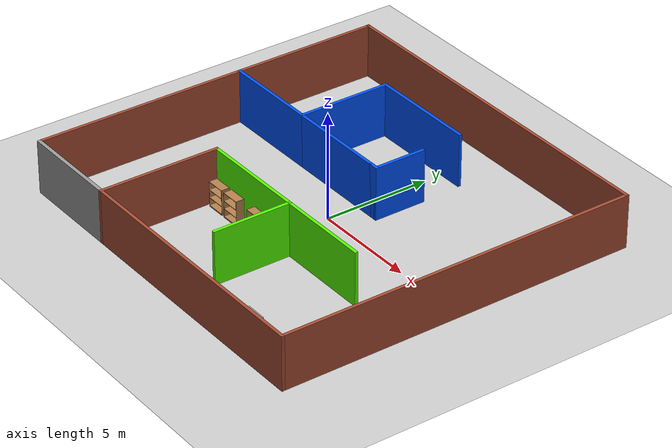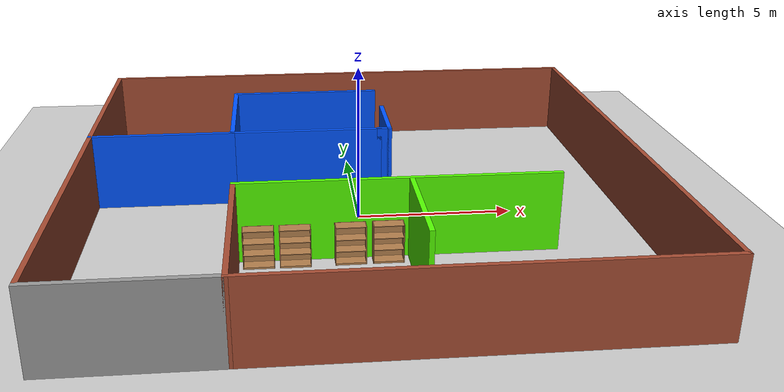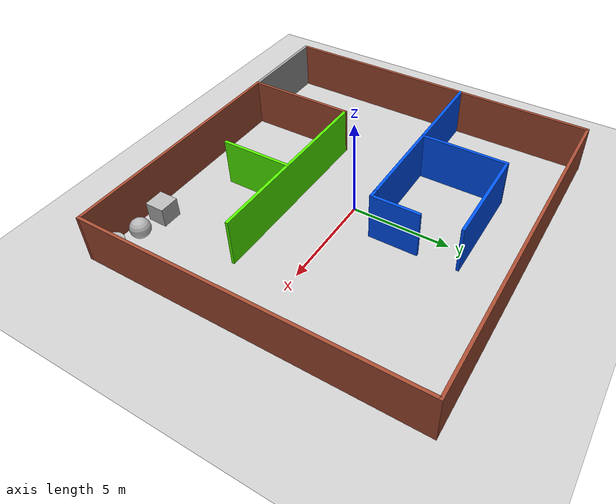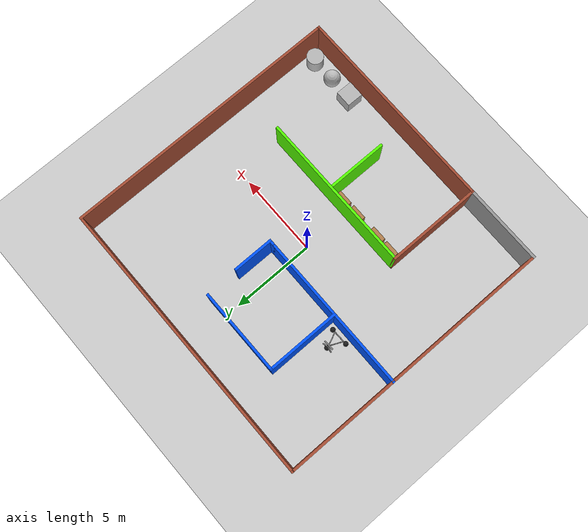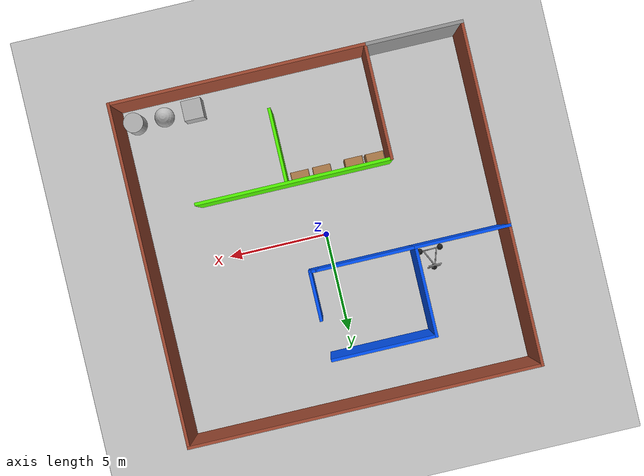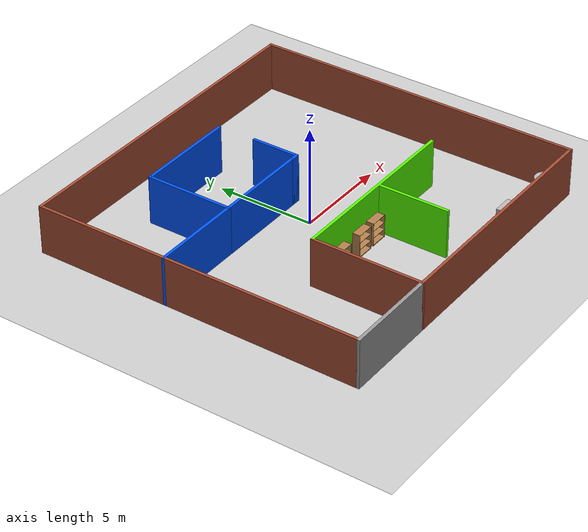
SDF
<sdf version="1.6">
 <world name="default">
  <model name="ground_plane">
   <static>1</static>
   <link name="link">
    <collision name="collision">
     <geometry><plane><normal>0 0 1</normal><size>100 100</size></plane></geometry>
     <surface><friction><ode><mu>100</mu><mu2>50</mu2></ode></friction></surface>
    </collision>
    <visual name="visual">
     <cast_shadows>0</cast_shadows>
     <geometry><plane><normal>0 0 1</normal><size>100 100</size></plane></geometry>
     <material>
      <script><uri>file://media/materials/scripts/gazebo.material</uri><name>Gazebo/Grey</name></script>
     </material>
    </visual>
   </link>
  </model>
  <model name="my_building">
   <pose>0.06133 -0.00347 0 0 -0 0</pose>
   <link name="Door_1">
    <collision name="Door_1_Collision">
     <geometry><box><size>4.8 0.17 2.5</size></box></geometry>
     <pose>0 0 1.25 0 -0 0</pose>
    </collision>
    <visual name="Door_1_Visual">
     <pose>0 0 1.25 0 -0 0</pose>
     <geometry><box><size>4.8 0.17 2.5</size></box></geometry>
     <material>
      <script><uri>file://media/materials/scripts/gazebo.material</uri><name>Gazebo/Grey</name></script>
     </material>
    </visual>
    <pose>-6.34787 -8.415 0 0 -0 0</pose>
   </link>
   <link name="Wall_13">
    <collision name="Wall_13_Collision">
     <geometry><box><size>4.75 0.15 2.5</size></box></geometry>
     <pose>0 0 1.25 0 -0 0</pose>
    </collision>
    <visual name="Wall_13_Visual">
     <pose>0 0 1.25 0 -0 0</pose>
     <geometry><box><size>4.75 0.15 2.5</size></box></geometry>
     <material>
      <script><uri>file://media/materials/scripts/gazebo.material</uri><name>Gazebo/Grey</name></script>
      <ambient>0 0.333333 1 1</ambient>
     </material>
     <meta><layer>0</layer></meta>
    </visual>
    <pose>-6.375 1.575 0 0 -0 3.14159</pose>
   </link>
   <link name="Wall_14">
    <collision name="Wall_14_Collision">
     <geometry><box><size>7 0.15 2.5</size></box></geometry>
     <pose>0 0 1.25 0 -0 0</pose>
    </collision>
    <visual name="Wall_14_Visual">
     <pose>0 0 1.25 0 -0 0</pose>
     <geometry><box><size>7 0.15 2.5</size></box></geometry>
     <material>
      <script><uri>file://media/materials/scripts/gazebo.material</uri><name>Gazebo/Bricks</name></script>
      <ambient>1 1 1 1</ambient>
     </material>
     <meta><layer>0</layer></meta>
    </visual>
    <pose>-8.675 5 0 0 -0 1.5708</pose>
   </link>
   <link name="Wall_15">
    <collision name="Wall_15_Collision">
     <geometry><box><size>17.5 0.15 2.5</size></box></geometry>
     <pose>0 0 1.25 0 -0 0</pose>
    </collision>
    <visual name="Wall_15_Visual">
     <pose>0 0 1.25 0 -0 0</pose>
     <geometry><box><size>17.5 0.15 2.5</size></box></geometry>
     <material>
      <script><uri>file://media/materials/scripts/gazebo.material</uri><name>Gazebo/Bricks</name></script>
      <ambient>1 1 1 1</ambient>
     </material>
     <meta><layer>0</layer></meta>
    </visual>
    <pose>0 8.425 0 0 -0 0</pose>
   </link>
   <link name="Wall_21">
    <collision name="Wall_21_Collision">
     <geometry><box><size>17 0.15 2.5</size></box></geometry>
     <pose>0 0 1.25 0 -0 0</pose>
    </collision>
    <visual name="Wall_21_Visual">
     <pose>0 0 1.25 0 -0 0</pose>
     <geometry><box><size>17 0.15 2.5</size></box></geometry>
     <material>
      <script><uri>file://media/materials/scripts/gazebo.material</uri><name>Gazebo/Bricks</name></script>
      <ambient>1 1 1 1</ambient>
     </material>
     <meta><layer>0</layer></meta>
    </visual>
    <pose>8.675 0 0 0 0 -1.5708</pose>
   </link>
   <link name="Wall_24">
    <collision name="Wall_24_Collision">
     <geometry><box><size>12.75 0.15 2.5</size></box></geometry>
     <pose>0 0 1.25 0 -0 0</pose>
    </collision>
    <visual name="Wall_24_Visual">
     <pose>0 0 1.25 0 -0 0</pose>
     <geometry><box><size>12.75 0.15 2.5</size></box></geometry>
     <material>
      <script><uri>file://media/materials/scripts/gazebo.material</uri><name>Gazebo/Bricks</name></script>
      <ambient>1 1 1 1</ambient>
     </material>
     <meta><layer>0</layer></meta>
    </visual>
    <pose>2.375 -8.425 0 0 -0 3.14159</pose>
   </link>
   <link name="Wall_25">
    <collision name="Wall_25_Collision">
     <geometry><box><size>5.75 0.15 2.5</size></box></geometry>
     <pose>0 0 1.25 0 -0 0</pose>
    </collision>
    <visual name="Wall_25_Visual">
     <pose>0 0 1.25 0 -0 0</pose>
     <geometry><box><size>5.75 0.15 2.5</size></box></geometry>
     <material>
      <script><uri>file://media/materials/scripts/gazebo.material</uri><name>Gazebo/Bricks</name></script>
      <ambient>1 1 1 1</ambient>
     </material>
     <meta><layer>0</layer></meta>
    </visual>
    <pose>-3.925 -5.625 0 0 -0 1.5708</pose>
   </link>
   <link name="Wall_26">
    <collision name="Wall_26_Collision">
     <geometry><box><size>9.75 0.15 2.5</size></box></geometry>
     <pose>0 0 1.25 0 -0 0</pose>
    </collision>
    <visual name="Wall_26_Visual">
     <pose>0 0 1.25 0 -0 0</pose>
     <geometry><box><size>9.75 0.15 2.5</size></box></geometry>
     <material>
      <script><uri>file://media/materials/scripts/gazebo.material</uri><name>Gazebo/Grey</name></script>
      <ambient>0.333333 1 0 1</ambient>
     </material>
     <meta><layer>0</layer></meta>
    </visual>
    <pose>0.875 -2.825 0 0 -0 0</pose>
   </link>
   <link name="Wall_30">
    <collision name="Wall_30_Collision">
     <geometry><box><size>4.5 0.15 2.5</size></box></geometry>
     <pose>0 0 1.25 0 -0 0</pose>
    </collision>
    <visual name="Wall_30_Visual">
     <pose>0 0 1.25 0 -0 0</pose>
     <geometry><box><size>4.5 0.15 2.5</size></box></geometry>
     <material>
      <script><uri>file://media/materials/scripts/gazebo.material</uri><name>Gazebo/Grey</name></script>
      <ambient>0 0.333333 1 1</ambient>
     </material>
     <meta><layer>0</layer></meta>
    </visual>
    <pose>-4.075 3.75 0 0 -0 1.5708</pose>
   </link>
   <link name="Wall_31">
    <collision name="Wall_31_Collision">
     <geometry><box><size>5.25 0.15 2.5</size></box></geometry>
     <pose>0 0 1.25 0 -0 0</pose>
    </collision>
    <visual name="Wall_31_Visual">
     <pose>0 0 1.25 0 -0 0</pose>
     <geometry><box><size>5.25 0.15 2.5</size></box></geometry>
     <material>
      <script><uri>file://media/materials/scripts/gazebo.material</uri><name>Gazebo/Grey</name></script>
      <ambient>0 0.333333 1 1</ambient>
     </material>
     <meta><layer>0</layer></meta>
    </visual>
    <pose>-1.525 5.925 0 0 -0 0</pose>
   </link>
   <link name="Wall_33">
    <collision name="Wall_33_Collision">
     <geometry><box><size>5 0.15 2.5</size></box></geometry>
     <pose>0 0 1.25 0 -0 0</pose>
    </collision>
    <visual name="Wall_33_Visual">
     <pose>0 0 1.25 0 -0 0</pose>
     <geometry><box><size>5 0.15 2.5</size></box></geometry>
     <material>
      <script><uri>file://media/materials/scripts/gazebo.material</uri><name>Gazebo/Grey</name></script>
      <ambient>0 0.333333 1 1</ambient>
     </material>
     <meta><layer>0</layer></meta>
    </visual>
    <pose>-1.65 1.575 0 0 -0 0</pose>
   </link>
   <link name="Wall_34">
    <collision name="Wall_34_Collision">
     <geometry><box><size>0.5 0.15 2.5</size></box></geometry>
     <pose>0 0 1.25 0 -0 0</pose>
    </collision>
    <visual name="Wall_34_Visual">
     <pose>0 0 1.25 0 -0 0</pose>
     <geometry><box><size>0.5 0.15 2.5</size></box></geometry>
     <material>
      <script><uri>file://media/materials/scripts/gazebo.material</uri><name>Gazebo/Grey</name></script>
      <ambient>0 0.333333 1 1</ambient>
     </material>
     <meta><layer>0</layer></meta>
    </visual>
    <pose>0.95 1.575 0 0 -0 0</pose>
   </link>
   <link name="Wall_35">
    <collision name="Wall_35_Collision">
     <geometry><box><size>2.5 0.15 2.5</size></box></geometry>
     <pose>0 0 1.25 0 -0 0</pose>
    </collision>
    <visual name="Wall_35_Visual">
     <pose>0 0 1.25 0 -0 0</pose>
     <geometry><box><size>2.5 0.15 2.5</size></box></geometry>
     <material>
      <script><uri>file://media/materials/scripts/gazebo.material</uri><name>Gazebo/Grey</name></script>
      <ambient>0 0.333333 1 1</ambient>
     </material>
     <meta><layer>0</layer></meta>
    </visual>
    <pose>1.125 2.75 0 0 -0 1.5708</pose>
   </link>
   <link name="Wall_37">
    <collision name="Wall_37_Collision">
     <geometry><box><size>10 0.15 2.5</size></box></geometry>
     <pose>0 0 1.25 0 -0 0</pose>
    </collision>
    <visual name="Wall_37_Visual">
     <pose>0 0 1.25 0 -0 0</pose>
     <geometry><box><size>10 0.15 2.5</size></box></geometry>
     <material>
      <script><uri>file://media/materials/scripts/gazebo.material</uri><name>Gazebo/Bricks</name></script>
      <ambient>1 1 1 1</ambient>
     </material>
     <meta><layer>0</layer></meta>
    </visual>
    <pose>-8.675 -3.35 0 0 0 -1.5708</pose>
   </link>
   <link name="Wall_39">
    <collision name="Wall_39_Collision">
     <geometry><box><size>3.75 0.15 2.5</size></box></geometry>
     <pose>0 0 1.25 0 -0 0</pose>
    </collision>
    <visual name="Wall_39_Visual">
     <pose>0 0 1.25 0 -0 0</pose>
     <geometry><box><size>3.75 0.15 2.5</size></box></geometry>
     <material>
      <script><uri>file://media/materials/scripts/gazebo.material</uri><name>Gazebo/Grey</name></script>
      <ambient>0.333333 1 0 1</ambient>
     </material>
     <meta><layer>0</layer></meta>
    </visual>
    <pose>1.24076 -4.62607 0 0 0 -1.5708</pose>
   </link>
   <static>1</static>
  </model>
  <model name="bookshelf">
   <static>1</static>
   <link name="link">
    <inertial><mass>1</mass></inertial>
    <collision name="back">
     <pose>0 0.005 0.6 0 -0 0</pose>
     <geometry><box><size>0.9 0.01 1.2</size></box></geometry>
    </collision>
    <visual name="visual1">
     <pose>0 0.005 0.6 0 -0 0</pose>
     <geometry><box><size>0.9 0.01 1.2</size></box></geometry>
     <material>
      <script><uri>file://media/materials/scripts/gazebo.material</uri><name>Gazebo/Wood</name></script>
     </material>
    </visual>
    <collision name="left_side">
     <pose>0.45 -0.195 0.6 0 -0 0</pose>
     <geometry><box><size>0.02 0.4 1.2</size></box></geometry>
    </collision>
    <visual name="visual2">
     <pose>0.45 -0.195 0.6 0 -0 0</pose>
     <geometry><box><size>0.02 0.4 1.2</size></box></geometry>
     <material>
      <script><uri>file://media/materials/scripts/gazebo.material</uri><name>Gazebo/Wood</name></script>
     </material>
    </visual>
    <collision name="right_side">
     <pose>-0.45 -0.195 0.6 0 -0 0</pose>
     <geometry><box><size>0.02 0.4 1.2</size></box></geometry>
    </collision>
    <visual name="visual3">
     <pose>-0.45 -0.195 0.6 0 -0 0</pose>
     <geometry><box><size>0.02 0.4 1.2</size></box></geometry>
     <material>
      <script><uri>file://media/materials/scripts/gazebo.material</uri><name>Gazebo/Wood</name></script>
     </material>
    </visual>
    <collision name="bottom">
     <pose>0 -0.195 0.03 0 -0 0</pose>
     <geometry><box><size>0.88 0.4 0.06</size></box></geometry>
    </collision>
    <visual name="visual4">
     <pose>0 -0.195 0.03 0 -0 0</pose>
     <geometry><box><size>0.88 0.4 0.06</size></box></geometry>
     <material>
      <script><uri>file://media/materials/scripts/gazebo.material</uri><name>Gazebo/Wood</name></script>
     </material>
    </visual>
    <collision name="top">
     <pose>0 -0.195 1.19 0 -0 0</pose>
     <geometry><box><size>0.88 0.4 0.02</size></box></geometry>
    </collision>
    <visual name="visual5">
     <pose>0 -0.195 1.19 0 -0 0</pose>
     <geometry><box><size>0.88 0.4 0.02</size></box></geometry>
     <material>
      <script><uri>file://media/materials/scripts/gazebo.material</uri><name>Gazebo/Wood</name></script>
     </material>
    </visual>
    <collision name="low_shelf">
     <pose>0 -0.195 0.43 0 -0 0</pose>
     <geometry><box><size>0.88 0.4 0.02</size></box></geometry>
    </collision>
    <visual name="visual6">
     <pose>0 -0.195 0.43 0 -0 0</pose>
     <geometry><box><size>0.88 0.4 0.02</size></box></geometry>
     <material>
      <script><uri>file://media/materials/scripts/gazebo.material</uri><name>Gazebo/Wood</name></script>
     </material>
    </visual>
    <collision name="high_shelf">
     <pose>0 -0.195 0.8 0 -0 0</pose>
     <geometry><box><size>0.88 0.4 0.02</size></box></geometry>
    </collision>
    <visual name="visual7">
     <pose>0 -0.195 0.8 0 -0 0</pose>
     <geometry><box><size>0.88 0.4 0.02</size></box></geometry>
     <material>
      <script><uri>file://media/materials/scripts/gazebo.material</uri><name>Gazebo/Wood</name></script>
     </material>
    </visual>
   </link>
   <pose>-3.20385 -2.9972 0 0 -0 0</pose>
  </model>
  <model name="bookshelf_clone">
   <static>1</static>
   <link name="link">
    <inertial><mass>1</mass></inertial>
    <collision name="back">
     <pose>0 0.005 0.6 0 -0 0</pose>
     <geometry><box><size>0.9 0.01 1.2</size></box></geometry>
    </collision>
    <visual name="visual1">
     <pose>0 0.005 0.6 0 -0 0</pose>
     <geometry><box><size>0.9 0.01 1.2</size></box></geometry>
     <material>
      <script><uri>file://media/materials/scripts/gazebo.material</uri><name>Gazebo/Wood</name></script>
     </material>
    </visual>
    <collision name="left_side">
     <pose>0.45 -0.195 0.6 0 -0 0</pose>
     <geometry><box><size>0.02 0.4 1.2</size></box></geometry>
    </collision>
    <visual name="visual2">
     <pose>0.45 -0.195 0.6 0 -0 0</pose>
     <geometry><box><size>0.02 0.4 1.2</size></box></geometry>
     <material>
      <script><uri>file://media/materials/scripts/gazebo.material</uri><name>Gazebo/Wood</name></script>
     </material>
    </visual>
    <collision name="right_side">
     <pose>-0.45 -0.195 0.6 0 -0 0</pose>
     <geometry><box><size>0.02 0.4 1.2</size></box></geometry>
    </collision>
    <visual name="visual3">
     <pose>-0.45 -0.195 0.6 0 -0 0</pose>
     <geometry><box><size>0.02 0.4 1.2</size></box></geometry>
     <material>
      <script><uri>file://media/materials/scripts/gazebo.material</uri><name>Gazebo/Wood</name></script>
     </material>
    </visual>
    <collision name="bottom">
     <pose>0 -0.195 0.03 0 -0 0</pose>
     <geometry><box><size>0.88 0.4 0.06</size></box></geometry>
    </collision>
    <visual name="visual4">
     <pose>0 -0.195 0.03 0 -0 0</pose>
     <geometry><box><size>0.88 0.4 0.06</size></box></geometry>
     <material>
      <script><uri>file://media/materials/scripts/gazebo.material</uri><name>Gazebo/Wood</name></script>
     </material>
    </visual>
    <collision name="top">
     <pose>0 -0.195 1.19 0 -0 0</pose>
     <geometry><box><size>0.88 0.4 0.02</size></box></geometry>
    </collision>
    <visual name="visual5">
     <pose>0 -0.195 1.19 0 -0 0</pose>
     <geometry><box><size>0.88 0.4 0.02</size></box></geometry>
     <material>
      <script><uri>file://media/materials/scripts/gazebo.material</uri><name>Gazebo/Wood</name></script>
     </material>
    </visual>
    <collision name="low_shelf">
     <pose>0 -0.195 0.43 0 -0 0</pose>
     <geometry><box><size>0.88 0.4 0.02</size></box></geometry>
    </collision>
    <visual name="visual6">
     <pose>0 -0.195 0.43 0 -0 0</pose>
     <geometry><box><size>0.88 0.4 0.02</size></box></geometry>
     <material>
      <script><uri>file://media/materials/scripts/gazebo.material</uri><name>Gazebo/Wood</name></script>
     </material>
    </visual>
    <collision name="high_shelf">
     <pose>0 -0.195 0.8 0 -0 0</pose>
     <geometry><box><size>0.88 0.4 0.02</size></box></geometry>
    </collision>
    <visual name="visual7">
     <pose>0 -0.195 0.8 0 -0 0</pose>
     <geometry><box><size>0.88 0.4 0.02</size></box></geometry>
     <material>
      <script><uri>file://media/materials/scripts/gazebo.material</uri><name>Gazebo/Wood</name></script>
     </material>
    </visual>
   </link>
   <pose>-2.13806 -3.00313 0 0 -0 0</pose>
  </model>
  <model name="bookshelf_clone_0">
   <static>1</static>
   <link name="link">
    <inertial><mass>1</mass></inertial>
    <collision name="back">
     <pose>0 0.005 0.6 0 -0 0</pose>
     <geometry><box><size>0.9 0.01 1.2</size></box></geometry>
    </collision>
    <visual name="visual1">
     <pose>0 0.005 0.6 0 -0 0</pose>
     <geometry><box><size>0.9 0.01 1.2</size></box></geometry>
     <material>
      <script><uri>file://media/materials/scripts/gazebo.material</uri><name>Gazebo/Wood</name></script>
     </material>
    </visual>
    <collision name="left_side">
     <pose>0.45 -0.195 0.6 0 -0 0</pose>
     <geometry><box><size>0.02 0.4 1.2</size></box></geometry>
    </collision>
    <visual name="visual2">
     <pose>0.45 -0.195 0.6 0 -0 0</pose>
     <geometry><box><size>0.02 0.4 1.2</size></box></geometry>
     <material>
      <script><uri>file://media/materials/scripts/gazebo.material</uri><name>Gazebo/Wood</name></script>
     </material>
    </visual>
    <collision name="right_side">
     <pose>-0.45 -0.195 0.6 0 -0 0</pose>
     <geometry><box><size>0.02 0.4 1.2</size></box></geometry>
    </collision>
    <visual name="visual3">
     <pose>-0.45 -0.195 0.6 0 -0 0</pose>
     <geometry><box><size>0.02 0.4 1.2</size></box></geometry>
     <material>
      <script><uri>file://media/materials/scripts/gazebo.material</uri><name>Gazebo/Wood</name></script>
     </material>
    </visual>
    <collision name="bottom">
     <pose>0 -0.195 0.03 0 -0 0</pose>
     <geometry><box><size>0.88 0.4 0.06</size></box></geometry>
    </collision>
    <visual name="visual4">
     <pose>0 -0.195 0.03 0 -0 0</pose>
     <geometry><box><size>0.88 0.4 0.06</size></box></geometry>
     <material>
      <script><uri>file://media/materials/scripts/gazebo.material</uri><name>Gazebo/Wood</name></script>
     </material>
    </visual>
    <collision name="top">
     <pose>0 -0.195 1.19 0 -0 0</pose>
     <geometry><box><size>0.88 0.4 0.02</size></box></geometry>
    </collision>
    <visual name="visual5">
     <pose>0 -0.195 1.19 0 -0 0</pose>
     <geometry><box><size>0.88 0.4 0.02</size></box></geometry>
     <material>
      <script><uri>file://media/materials/scripts/gazebo.material</uri><name>Gazebo/Wood</name></script>
     </material>
    </visual>
    <collision name="low_shelf">
     <pose>0 -0.195 0.43 0 -0 0</pose>
     <geometry><box><size>0.88 0.4 0.02</size></box></geometry>
    </collision>
    <visual name="visual6">
     <pose>0 -0.195 0.43 0 -0 0</pose>
     <geometry><box><size>0.88 0.4 0.02</size></box></geometry>
     <material>
      <script><uri>file://media/materials/scripts/gazebo.material</uri><name>Gazebo/Wood</name></script>
     </material>
    </visual>
    <collision name="high_shelf">
     <pose>0 -0.195 0.8 0 -0 0</pose>
     <geometry><box><size>0.88 0.4 0.02</size></box></geometry>
    </collision>
    <visual name="visual7">
     <pose>0 -0.195 0.8 0 -0 0</pose>
     <geometry><box><size>0.88 0.4 0.02</size></box></geometry>
     <material>
      <script><uri>file://media/materials/scripts/gazebo.material</uri><name>Gazebo/Wood</name></script>
     </material>
    </visual>
   </link>
   <pose>0.597484 -2.96142 0 0 -0 0</pose>
  </model>
  <model name="bookshelf_clone_1">
   <static>1</static>
   <link name="link">
    <inertial><mass>1</mass></inertial>
    <collision name="back">
     <pose>0 0.005 0.6 0 -0 0</pose>
     <geometry><box><size>0.9 0.01 1.2</size></box></geometry>
    </collision>
    <visual name="visual1">
     <pose>0 0.005 0.6 0 -0 0</pose>
     <geometry><box><size>0.9 0.01 1.2</size></box></geometry>
     <material>
      <script><uri>file://media/materials/scripts/gazebo.material</uri><name>Gazebo/Wood</name></script>
     </material>
    </visual>
    <collision name="left_side">
     <pose>0.45 -0.195 0.6 0 -0 0</pose>
     <geometry><box><size>0.02 0.4 1.2</size></box></geometry>
    </collision>
    <visual name="visual2">
     <pose>0.45 -0.195 0.6 0 -0 0</pose>
     <geometry><box><size>0.02 0.4 1.2</size></box></geometry>
     <material>
      <script><uri>file://media/materials/scripts/gazebo.material</uri><name>Gazebo/Wood</name></script>
     </material>
    </visual>
    <collision name="right_side">
     <pose>-0.45 -0.195 0.6 0 -0 0</pose>
     <geometry><box><size>0.02 0.4 1.2</size></box></geometry>
    </collision>
    <visual name="visual3">
     <pose>-0.45 -0.195 0.6 0 -0 0</pose>
     <geometry><box><size>0.02 0.4 1.2</size></box></geometry>
     <material>
      <script><uri>file://media/materials/scripts/gazebo.material</uri><name>Gazebo/Wood</name></script>
     </material>
    </visual>
    <collision name="bottom">
     <pose>0 -0.195 0.03 0 -0 0</pose>
     <geometry><box><size>0.88 0.4 0.06</size></box></geometry>
    </collision>
    <visual name="visual4">
     <pose>0 -0.195 0.03 0 -0 0</pose>
     <geometry><box><size>0.88 0.4 0.06</size></box></geometry>
     <material>
      <script><uri>file://media/materials/scripts/gazebo.material</uri><name>Gazebo/Wood</name></script>
     </material>
    </visual>
    <collision name="top">
     <pose>0 -0.195 1.19 0 -0 0</pose>
     <geometry><box><size>0.88 0.4 0.02</size></box></geometry>
    </collision>
    <visual name="visual5">
     <pose>0 -0.195 1.19 0 -0 0</pose>
     <geometry><box><size>0.88 0.4 0.02</size></box></geometry>
     <material>
      <script><uri>file://media/materials/scripts/gazebo.material</uri><name>Gazebo/Wood</name></script>
     </material>
    </visual>
    <collision name="low_shelf">
     <pose>0 -0.195 0.43 0 -0 0</pose>
     <geometry><box><size>0.88 0.4 0.02</size></box></geometry>
    </collision>
    <visual name="visual6">
     <pose>0 -0.195 0.43 0 -0 0</pose>
     <geometry><box><size>0.88 0.4 0.02</size></box></geometry>
     <material>
      <script><uri>file://media/materials/scripts/gazebo.material</uri><name>Gazebo/Wood</name></script>
     </material>
    </visual>
    <collision name="high_shelf">
     <pose>0 -0.195 0.8 0 -0 0</pose>
     <geometry><box><size>0.88 0.4 0.02</size></box></geometry>
    </collision>
    <visual name="visual7">
     <pose>0 -0.195 0.8 0 -0 0</pose>
     <geometry><box><size>0.88 0.4 0.02</size></box></geometry>
     <material>
      <script><uri>file://media/materials/scripts/gazebo.material</uri><name>Gazebo/Wood</name></script>
     </material>
    </visual>
   </link>
   <pose>-0.5159 -2.97189 0 0 -0 0</pose>
  </model>
  <model name="textured_shapes">
   <pose>6.55645 -7.56916 0.5 0 0 -1.57696</pose>
   <link name="box">
    <pose>0 -1.5 0 0 -0 0</pose>
    <collision name="collision"><geometry><box><size>1 1 1</size></box></geometry></collision>
    <visual name="visual">
     <geometry><box><size>1 1 1</size></box></geometry>
     <material>
      <script>
       <uri>model://textured_shapes/materials/scripts</uri>
       <uri>model://textured_shapes/materials/textures</uri>
       <name>TexturedShape/Squares</name>
      </script>
     </material>
    </visual>
    <inertial>
     <inertia><ixx>1</ixx><ixy>0</ixy><ixz>0</ixz><iyy>1</iyy><iyz>0</iyz><izz>1</izz></inertia>
     <mass>1</mass>
    </inertial>
   </link>
   <link name="sphere">
    <collision name="collision"><geometry><sphere><radius>0.5</radius></sphere></geometry></collision>
    <visual name="visual">
     <geometry><sphere><radius>0.5</radius></sphere></geometry>
     <material>
      <script>
       <uri>model://textured_shapes/materials/scripts</uri>
       <uri>model://textured_shapes/materials/textures</uri>
       <name>TexturedShape/Squares</name>
      </script>
     </material>
    </visual>
    <inertial>
     <inertia><ixx>1</ixx><ixy>0</ixy><ixz>0</ixz><iyy>1</iyy><iyz>0</iyz><izz>1</izz></inertia>
     <mass>1</mass>
    </inertial>
   </link>
   <link name="cylinder">
    <pose>0 1.5 0 0 -0 0</pose>
    <collision name="collision">
     <geometry><cylinder><radius>0.5</radius><length>1</length></cylinder></geometry>
    </collision>
    <visual name="visual">
     <geometry><cylinder><radius>0.5</radius><length>1</length></cylinder></geometry>
     <material>
      <script>
       <uri>model://textured_shapes/materials/scripts</uri>
       <uri>model://textured_shapes/materials/textures</uri>
       <name>TexturedShape/Squares</name>
      </script>
     </material>
    </visual>
    <inertial>
     <inertia><ixx>1</ixx><ixy>0</ixy><ixz>0</ixz><iyy>1</iyy><iyz>0</iyz><izz>1</izz></inertia>
     <mass>1</mass>
    </inertial>
   </link>
  </model>
  <model name="trisphere_cycle">
   <link name="frame">
    <pose>-0.408559 0 0.385023 0 -0.522021 0</pose>
    <inertial>
     <mass>10</mass>
     <inertia><ixx>0.228</ixx><iyy>0.743521</iyy><izz>0.965521</izz><ixy>0</ixy><ixz>0</ixz><iyz>0</iyz></inertia>
    </inertial>
    <collision name="axle_collision">
     <pose>-0.471335 0 0 1.5708 -0 0</pose>
     <geometry><cylinder><length>1.03923</length><radius>0.03</radius></cylinder></geometry>
    </collision>
    <visual name="axle_visual">
     <pose>-0.471335 0 0 1.5708 -0 0</pose>
     <geometry><cylinder><length>1.03923</length><radius>0.03</radius></cylinder></geometry>
     <material>
      <script><uri>file://media/materials/scripts/gazebo.material</uri><name>Gazebo/Grey</name></script>
     </material>
    </visual>
    <collision name="frame_left_collision">
     <pose>0 0.171552 0 -2.79253 1.57079 3.14159</pose>
     <geometry><cylinder><length>1.00317</length><radius>0.03</radius></cylinder></geometry>
    </collision>
    <visual name="frame_left_visual">
     <pose>0 0.171552 0 -2.79253 1.57079 3.14159</pose>
     <geometry><cylinder><length>1.00317</length><radius>0.03</radius></cylinder></geometry>
     <material>
      <script><uri>file://media/materials/scripts/gazebo.material</uri><name>Gazebo/Grey</name></script>
     </material>
    </visual>
    <collision name="frame_right_collision">
     <pose>0 -0.171552 0 2.79253 1.57079 -3.14159</pose>
     <geometry><cylinder><length>1.00317</length><radius>0.03</radius></cylinder></geometry>
    </collision>
    <visual name="frame_right_visual">
     <pose>0 -0.171552 0 2.79253 1.57079 -3.14159</pose>
     <geometry><cylinder><length>1.00317</length><radius>0.03</radius></cylinder></geometry>
     <material>
      <script><uri>file://media/materials/scripts/gazebo.material</uri><name>Gazebo/Grey</name></script>
     </material>
    </visual>
   </link>
   <link name="fork">
    <pose>0.041441 0 0.385023 0 -0.174533 0</pose>
    <inertial>
     <mass>3</mass>
     <inertia>
      <ixx>0.158203</ixx>
      <iyy>0.0583594</iyy>
      <izz>0.102656</izz>
      <ixy>0</ixy>
      <ixz>0</ixz>
      <iyz>0</iyz>
     </inertia>
    </inertial>
    <collision name="handlebars_collision">
     <pose>0 0 0.397748 1.5708 -0 0</pose>
     <geometry><cylinder><length>0.636396</length><radius>0.0375</radius></cylinder></geometry>
    </collision>
    <visual name="handlebars_visual">
     <pose>0 0 0.397748 1.5708 -0 0</pose>
     <geometry><cylinder><length>0.636396</length><radius>0.0375</radius></cylinder></geometry>
     <material>
      <script><uri>file://media/materials/scripts/gazebo.material</uri><name>Gazebo/Grey</name></script>
     </material>
    </visual>
    <collision name="headtube_collision">
     <pose>0 0 0.238649 0 -0 0</pose>
     <geometry><cylinder><length>0.318198</length><radius>0.0375</radius></cylinder></geometry>
    </collision>
    <visual name="headtube_visual">
     <pose>0 0 0.238649 0 -0 0</pose>
     <geometry><cylinder><length>0.318198</length><radius>0.0375</radius></cylinder></geometry>
     <material>
      <script><uri>file://media/materials/scripts/gazebo.material</uri><name>Gazebo/Grey</name></script>
     </material>
    </visual>
    <collision name="spindle_collision">
     <pose>0 0 -0.238649 1.5708 -0 0</pose>
     <geometry><cylinder><length>0.636396</length><radius>0.015</radius></cylinder></geometry>
    </collision>
    <visual name="spindle_visual">
     <pose>0 0 -0.238649 1.5708 -0 0</pose>
     <geometry><cylinder><length>0.636396</length><radius>0.015</radius></cylinder></geometry>
     <material>
      <script><uri>file://media/materials/scripts/gazebo.material</uri><name>Gazebo/Grey</name></script>
     </material>
    </visual>
    <collision name="fork_left_collision">
     <pose>0 0.159099 -0.07955 0.785398 -0 0</pose>
     <geometry><cylinder><length>0.45</length><radius>0.0375</radius></cylinder></geometry>
    </collision>
    <visual name="fork_left_visual">
     <pose>0 0.159099 -0.07955 0.785398 -0 0</pose>
     <geometry><cylinder><length>0.45</length><radius>0.0375</radius></cylinder></geometry>
     <material>
      <script><uri>file://media/materials/scripts/gazebo.material</uri><name>Gazebo/Grey</name></script>
     </material>
    </visual>
    <collision name="fork_right_collision">
     <pose>0 -0.159099 -0.07955 -0.785398 0 0</pose>
     <geometry><cylinder><length>0.45</length><radius>0.0375</radius></cylinder></geometry>
    </collision>
    <visual name="fork_right_visual">
     <pose>0 -0.159099 -0.07955 -0.785398 0 0</pose>
     <geometry><cylinder><length>0.45</length><radius>0.0375</radius></cylinder></geometry>
     <material>
      <script><uri>file://media/materials/scripts/gazebo.material</uri><name>Gazebo/Grey</name></script>
     </material>
    </visual>
   </link>
   <link name="wheel_front">
    <pose>0.082882 0 0.15 0 -0 0</pose>
    <inertial>
     <mass>0.5</mass>
     <inertia><ixx>0.0045</ixx><iyy>0.0045</iyy><izz>0.0045</izz><ixy>0</ixy><ixz>0</ixz><iyz>0</iyz></inertia>
    </inertial>
    <collision name="collision">
     <geometry><sphere><radius>0.15</radius></sphere></geometry>
     <surface><contact><ode><kp>1e+08</kp><kd>1</kd><min_depth>0.0005</min_depth></ode></contact></surface>
    </collision>
    <visual name="visual">
     <geometry><sphere><radius>0.15</radius></sphere></geometry>
     <material>
      <script><uri>file://media/materials/scripts/gazebo.material</uri><name>Gazebo/Black</name></script>
     </material>
    </visual>
   </link>
   <joint name="wheel_front_steer" type="revolute">
    <parent>frame</parent>
    <child>fork</child>
    <axis>
     <xyz>0 0 1</xyz>
     <limit><lower>-0.959931</lower><upper>0.959931</upper></limit>
     <dynamics><spring_reference>0</spring_reference><spring_stiffness>0</spring_stiffness></dynamics>
     <use_parent_model_frame>0</use_parent_model_frame>
    </axis>
   </joint>
   <joint name="wheel_front_spin" type="revolute">
    <parent>fork</parent>
    <child>wheel_front</child>
    <axis>
     <xyz>0 1 0</xyz>
     <limit><lower>-1e+16</lower><upper>1e+16</upper></limit>
     <dynamics><spring_reference>0</spring_reference><spring_stiffness>0</spring_stiffness></dynamics>
     <use_parent_model_frame>0</use_parent_model_frame>
    </axis>
   </joint>
   <link name="wheel_rear_left">
    <pose>-0.817118 0.519615 0.15 0 -0 0</pose>
    <inertial>
     <mass>0.5</mass>
     <inertia><ixx>0.0045</ixx><iyy>0.0045</iyy><izz>0.0045</izz><ixy>0</ixy><ixz>0</ixz><iyz>0</iyz></inertia>
    </inertial>
    <collision name="collision">
     <geometry><sphere><radius>0.15</radius></sphere></geometry>
     <surface><contact><ode><kp>1e+08</kp><kd>1</kd><min_depth>0.0005</min_depth></ode></contact></surface>
    </collision>
    <visual name="visual">
     <geometry><sphere><radius>0.15</radius></sphere></geometry>
     <material>
      <script><uri>file://media/materials/scripts/gazebo.material</uri><name>Gazebo/Black</name></script>
     </material>
    </visual>
   </link>
   <joint name="wheel_rear_left_spin" type="revolute">
    <parent>frame</parent>
    <child>wheel_rear_left</child>
    <axis>
     <xyz>0 1 0</xyz>
     <limit><lower>-1e+16</lower><upper>1e+16</upper></limit>
     <dynamics><spring_reference>0</spring_reference><spring_stiffness>0</spring_stiffness></dynamics>
     <use_parent_model_frame>0</use_parent_model_frame>
    </axis>
   </joint>
   <link name="wheel_rear_right">
    <pose>-0.817118 -0.519615 0.15 0 -0 0</pose>
    <inertial>
     <mass>0.5</mass>
     <inertia><ixx>0.0045</ixx><iyy>0.0045</iyy><izz>0.0045</izz><ixy>0</ixy><ixz>0</ixz><iyz>0</iyz></inertia>
    </inertial>
    <collision name="collision">
     <geometry><sphere><radius>0.15</radius></sphere></geometry>
     <surface><contact><ode><kp>1e+08</kp><kd>1</kd><min_depth>0.0005</min_depth></ode></contact></surface>
    </collision>
    <visual name="visual">
     <geometry><sphere><radius>0.15</radius></sphere></geometry>
     <material>
      <script><uri>file://media/materials/scripts/gazebo.material</uri><name>Gazebo/Black</name></script>
     </material>
    </visual>
   </link>
   <joint name="wheel_rear_right_spin" type="revolute">
    <parent>frame</parent>
    <child>wheel_rear_right</child>
    <axis>
     <xyz>0 1 0</xyz>
     <limit><lower>-1e+16</lower><upper>1e+16</upper></limit>
     <dynamics><spring_reference>0</spring_reference><spring_stiffness>0</spring_stiffness></dynamics>
     <use_parent_model_frame>0</use_parent_model_frame>
    </axis>
   </joint>
   <pose>-4.92916 2.74329 -0.000501 0 1e-06 1.58885</pose>
  </model>
 </world>
</sdf>
